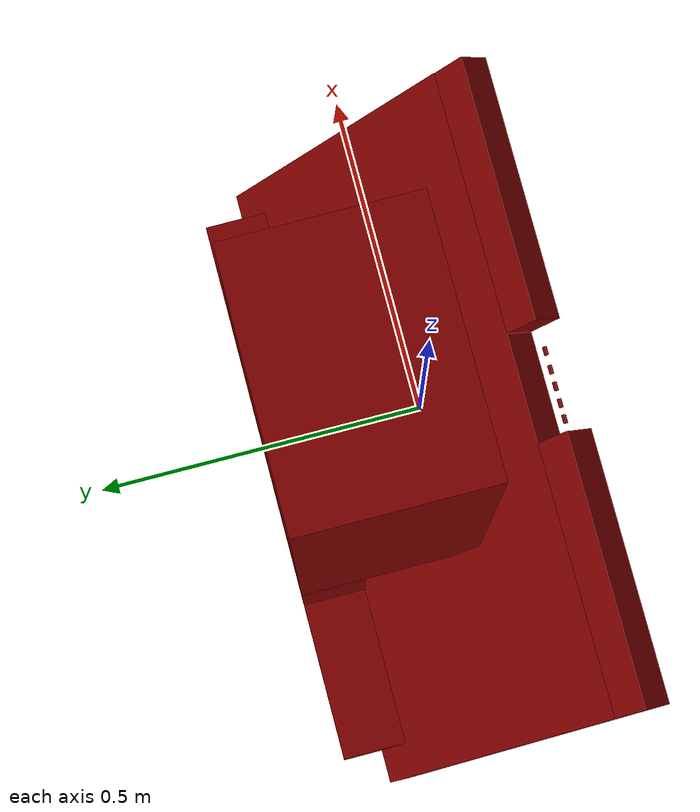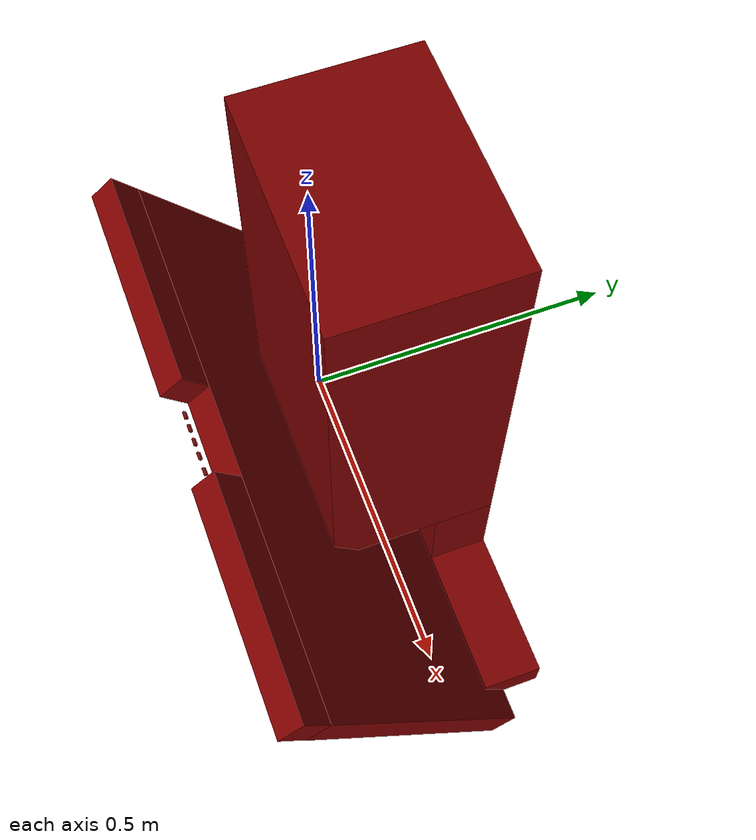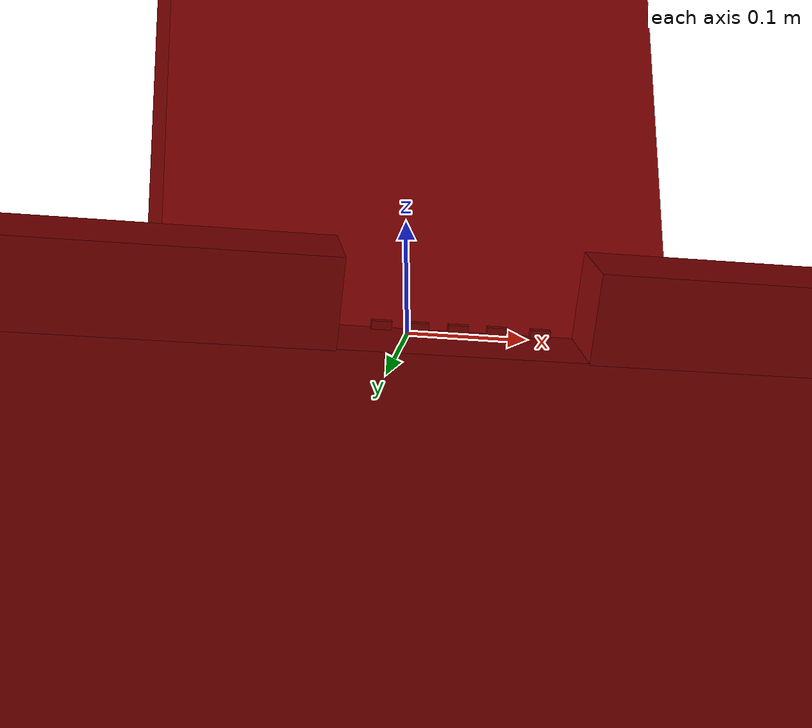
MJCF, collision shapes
<?xml version='1.0' encoding='UTF-8'?>
<mujoco model="model">
  <compiler angle="radian"/>
  <asset>
    <mesh file="visuals/Body001.obj" name="Body001_vis"/>
    <mesh file="visuals/Button001.obj" name="Button001_vis"/>
    <mesh file="visuals/Button002.obj" name="Button002_vis"/>
    <mesh file="visuals/Button003.obj" name="Button003_vis"/>
    <mesh file="visuals/Button004.obj" name="Button004_vis"/>
    <mesh file="visuals/Button005.obj" name="Button005_vis"/>
    <texture file="visuals/T_BC001.png" name="Body001_material" type="2d"/>
    <material name="Body001_material" rgba="1 1 1 1.0" texture="Body001_material" shininess="0.5" specular="0.3103448502657381"/>
    <texture file="visuals/T_BC001.png" name="Button001_material" type="2d"/>
    <material name="Button001_material" rgba="1 1 1 1.0" texture="Button001_material" shininess="0.5" specular="0.3103448502657381"/>
    <texture file="visuals/T_BC001.png" name="Button002_material" type="2d"/>
    <material name="Button002_material" rgba="1 1 1 1.0" texture="Button002_material" shininess="0.5" specular="0.3103448502657381"/>
    <texture file="visuals/T_BC001.png" name="Button003_material" type="2d"/>
    <material name="Button003_material" rgba="1 1 1 1.0" texture="Button003_material" shininess="0.5" specular="0.3103448502657381"/>
    <texture file="visuals/T_BC001.png" name="Button004_material" type="2d"/>
    <material name="Button004_material" rgba="1 1 1 1.0" texture="Button004_material" shininess="0.5" specular="0.3103448502657381"/>
    <texture file="visuals/T_BC001.png" name="Button005_material" type="2d"/>
    <material name="Button005_material" rgba="1 1 1 1.0" texture="Button005_material" shininess="0.5" specular="0.3103448502657381"/>
  </asset>
  <default>
    <default class="visual">
      <geom conaffinity="0" contype="0" group="1" type="mesh"/>
    </default>
    <default class="collision">
      <geom group="0" rgba="0.5 0 0 0.5"/>
    </default>
    <default class="spawn">
      <geom group="0" rgba="1 1 1 0.5" contype="0" conaffinity="0"/>
      <site group="0" rgba="1 1 1 0.5"/>
    </default>
    <default class="region">
      <geom group="1" conaffinity="0" contype="0" rgba="0 1 0 0"/>
    </default>
  </default>
  <worldbody>
    <body>
      <body name="object">
        <geom mesh="Body001_vis" type="mesh" solimp="0.998 0.998 0.001" solref="0.001 1" density="100" friction="0.95 0.3 0.1" class="visual" material="Body001_material"/>
        <geom class="collision" type="box" pos="-0.000400 0.097021 0.113196" size="0.20622330904006958 0.1483086794614792 0.3704248070716858" quat="1.0 0.0 0.0 0.0"/>
        <geom class="collision" type="box" pos="-0.000400 0.192133 -0.340930" size="0.20622330904006958 0.05319668725132942 0.08349471539258957" quat="1.0 0.0 0.0 0.0"/>
        <geom class="collision" type="box" pos="0.000333 0.192133 -0.452699" size="0.4742727279663086 0.053196653723716736 0.03092200495302677" quat="1.0 0.0 0.0 0.0"/>
        <geom class="collision" type="box" pos="0.000662 -0.015898 -0.288626" size="0.530974268913269 0.2705487310886383 0.027582837268710136" quat="0.9063156247138977 -0.42260149121284485 -0.0 0.0"/>
        <geom class="collision" type="box" pos="-0.310179 -0.210730 -0.056452" size="0.22013355791568756 0.033702705055475235 0.027582837268710136" quat="0.9063156247138977 -0.42260149121284485 -0.0 0.0"/>
        <geom class="collision" type="box" pos="0.310669 -0.210730 -0.056452" size="0.22013355791568756 0.033702705055475235 0.027582837268710136" quat="0.9063156247138977 -0.42260149121284485 -0.0 0.0"/>
        <body name="Button001">
          <joint axis="-1.2534659574754133e-16 0.7609378099441528 0.6488248705863953" pos="-0.060760 -0.222093 -0.083334" limited="true" name="Button001_joint" range="0.0 0.001" type="slide" damping="1" frictionloss="1" armature=".01" stiffness="0.05" springref="-0.01"/>
          <geom mesh="Button001_vis" type="mesh" solimp="0.998 0.998 0.001" solref="0.001 1" density="100" friction="0.95 0.3 0.1" class="visual" material="Button001_material"/>
          <geom class="collision" type="box" pos="-0.060636 -0.222364 -0.083354" size="0.007142625283449888 0.003043202683329582 0.0020218018908053637" quat="0.9063156247138977 -0.42260149121284485 -0.0 0.0"/>
        </body>
        <body name="Button002">
          <joint axis="-1.2534659574754133e-16 0.7609378099441528 0.6488248705863953" pos="-0.034759 -0.222093 -0.083334" limited="true" name="Button002_joint" range="0.0 0.001" type="slide" damping="1" frictionloss="1" armature=".01" stiffness="0.05" springref="-0.01"/>
          <geom mesh="Button002_vis" type="mesh" solimp="0.998 0.998 0.001" solref="0.001 1" density="100" friction="0.95 0.3 0.1" class="visual" material="Button002_material"/>
          <geom class="collision" type="box" pos="-0.034608 -0.222364 -0.083354" size="0.007142625283449888 0.003043202683329582 0.0020218018908053637" quat="0.9063156247138977 -0.42260149121284485 -0.0 0.0"/>
        </body>
        <body name="Button003">
          <joint axis="-1.2534659574754133e-16 0.7609378099441528 0.6488248705863953" pos="-0.006896 -0.222093 -0.083334" limited="true" name="Button003_joint" range="0.0 0.001" type="slide" damping="1" frictionloss="1" armature=".01" stiffness="0.05" springref="-0.01"/>
          <geom mesh="Button003_vis" type="mesh" solimp="0.998 0.998 0.001" solref="0.001 1" density="100" friction="0.95 0.3 0.1" class="visual" material="Button003_material"/>
          <geom class="collision" type="box" pos="-0.006713 -0.222364 -0.083354" size="0.007142625283449888 0.003043202683329582 0.0020218018908053637" quat="0.9063156247138977 -0.42260149121284485 -0.0 0.0"/>
        </body>
        <body name="Button004">
          <joint axis="-1.2534659574754133e-16 0.7609378099441528 0.6488248705863953" pos="0.021071 -0.222093 -0.083334" limited="true" name="Button004_joint" range="0.0 0.001" type="slide" damping="1" frictionloss="1" armature=".01" stiffness="0.05" springref="-0.01"/>
          <geom mesh="Button004_vis" type="mesh" solimp="0.998 0.998 0.001" solref="0.001 1" density="100" friction="0.95 0.3 0.1" class="visual" material="Button004_material"/>
          <geom class="collision" type="box" pos="0.021082 -0.222364 -0.083354" size="0.007142625283449888 0.003043202683329582 0.0020218018908053637" quat="0.9063156247138977 -0.42260149121284485 -0.0 0.0"/>
        </body>
        <body name="Button005">
          <joint axis="0.0 0.765736997127533 0.6431539058685303" pos="0.051804 -0.222093 -0.083334" limited="true" name="Button005_joint" range="0.0 0.001" type="slide" damping="1" frictionloss="1" armature=".01" stiffness="0.05" springref="-0.01"/>
          <geom mesh="Button005_vis" type="mesh" solimp="0.998 0.998 0.001" solref="0.001 1" density="100" friction="0.95 0.3 0.1" class="visual" material="Button005_material"/>
          <geom class="collision" type="box" pos="0.051949 -0.222364 -0.083354" size="0.007142625283449888 0.003043202683329582 0.0020218018908053637" quat="0.9063156247138977 -0.42260149121284485 -0.0 0.0"/>
        </body>
        <geom class="region" name="reg_main" type="box" pos="0.0 -0.00032200000000000284 0.002140000000000003" size="0.528364 0.245008 0.479745"/>
      </body>
    </body>
  </worldbody>
  <actuator>
    <motor name="Button001_joint_actuator" joint="Button001_joint" gear="0.05"/>
    <motor name="Button002_joint_actuator" joint="Button002_joint" gear="0.05"/>
    <motor name="Button003_joint_actuator" joint="Button003_joint" gear="0.05"/>
    <motor name="Button004_joint_actuator" joint="Button004_joint" gear="0.05"/>
    <motor name="Button005_joint_actuator" joint="Button005_joint" gear="0.05"/>
  </actuator>
</mujoco>
